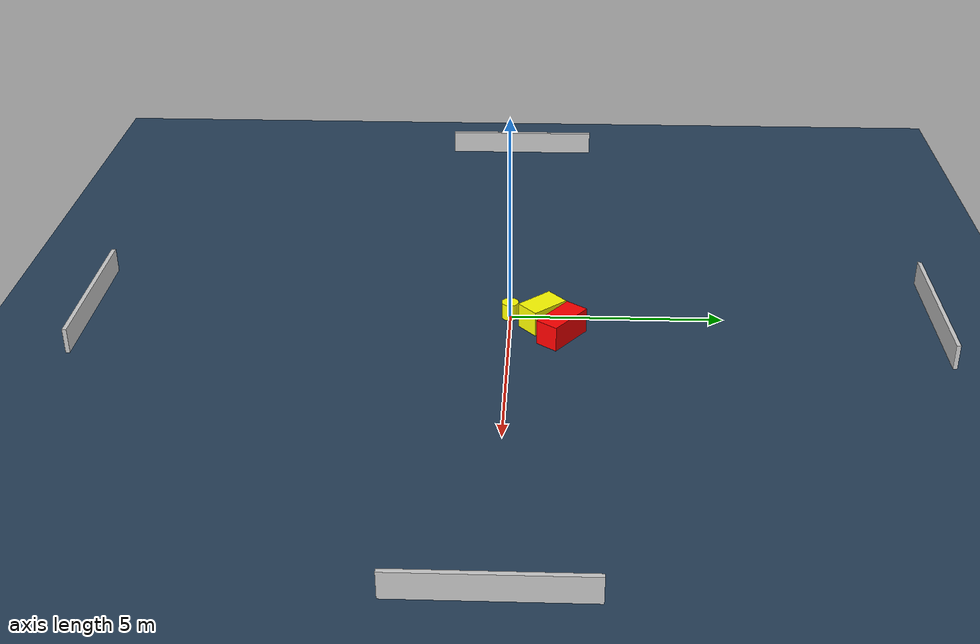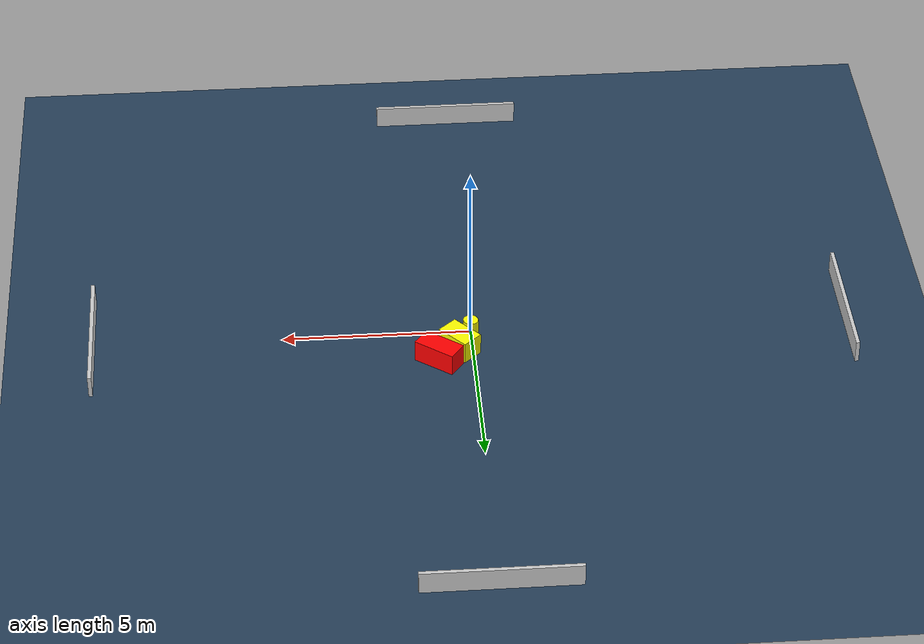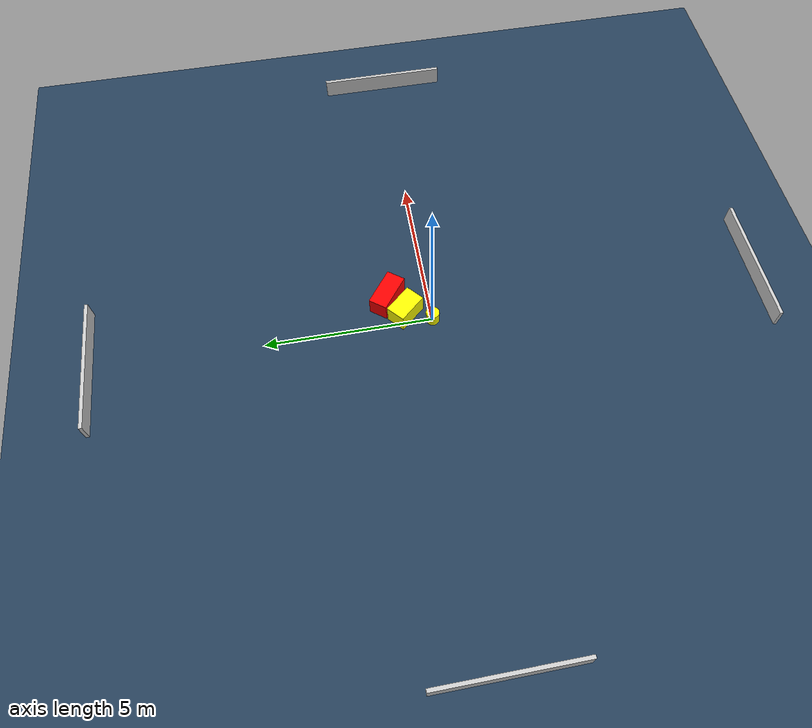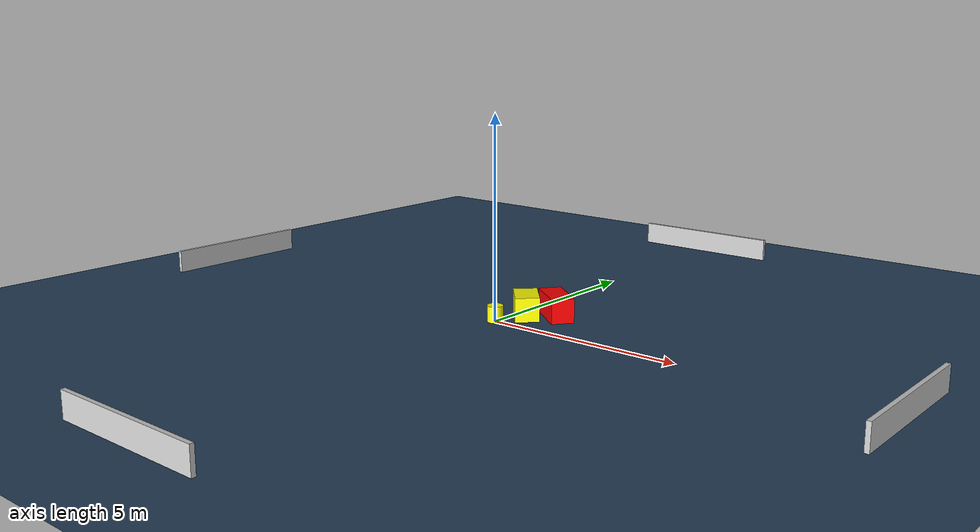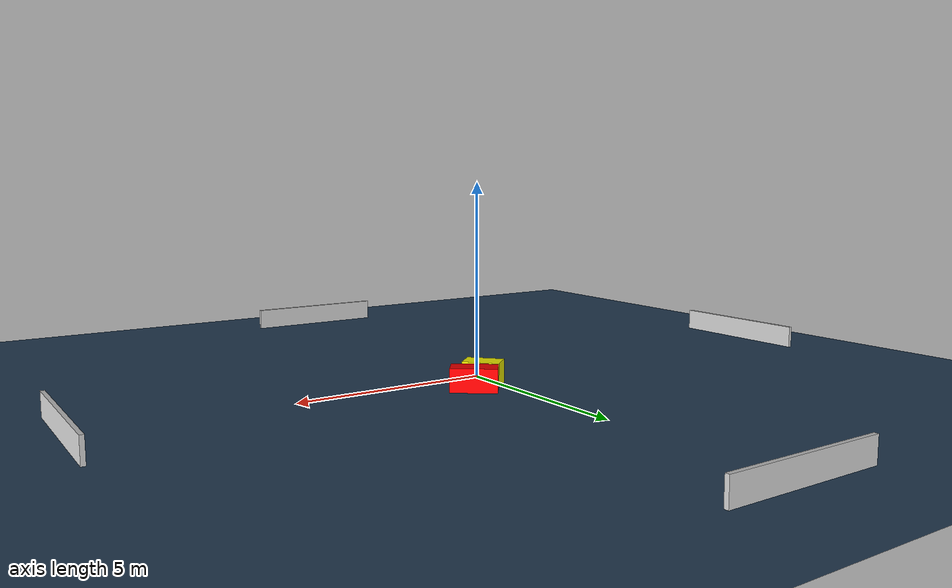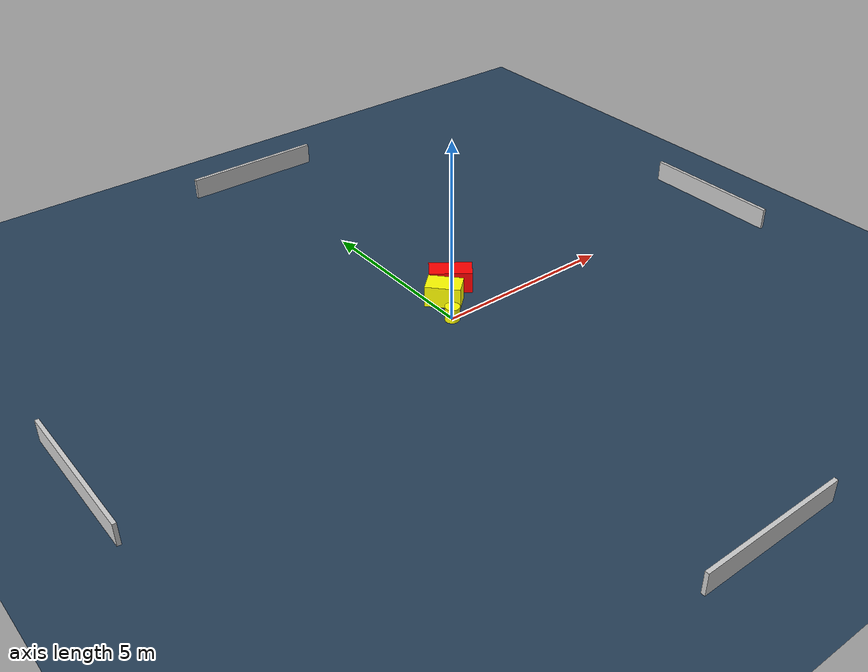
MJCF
<?xml version="1.0" ?>
<mujoco model="generated_environment">
  <option timestep="0.01" integrator="RK4" cone="elliptic"/>
  <default>
    <geom density="1"/>
  </default>
  <asset>
    <texture builtin="gradient" height="3072" name="skybox" rgb1="0.3 0.5 0.7" rgb2="0 0 0" type="skybox" width="512"/>
    <texture builtin="checker" height="300" name="groundplane" rgb1="0.2 0.3 0.4" rgb2="0.1 0.2 0.3" type="2d" width="300"/>
    <material name="groundplane" reflectance="0.2" texrepeat="5 5" texture="groundplane"/>
  </asset>
  <worldbody>
    <light dir="0 0 -1" directional="true" pos="0 0 1.5"/>
    <geom condim="3" friction="0.5 0.005 0.001" material="groundplane" name="floor" pos="0 0 0" size="0 0 0.05" type="plane"/>
    <body name="walls">
      <geom name="wall_1" condim="4" pos="-10.0 0.0 0.3" rgba="0.800000011920929 0.800000011920929 0.800000011920929 1.0" size="0.05 2.0 0.3" type="box"/>
      <geom name="wall_2" condim="4" pos="10.0 0.0 0.3" rgba="0.800000011920929 0.800000011920929 0.800000011920929 1.0" size="0.05 2.0 0.3" type="box"/>
      <geom name="wall_3" condim="4" pos="0.0 -10.0 0.3" rgba="0.800000011920929 0.800000011920929 0.800000011920929 1.0" size="2.0 0.05 0.3" type="box"/>
      <geom name="wall_4" condim="4" pos="0.0 10.0 0.3" rgba="0.800000011920929 0.800000011920929 0.800000011920929 1.0" size="2.0 0.05 0.3" type="box"/>
    </body>
    <body name="robot">
      <joint name="joint_x" type="slide" pos="0 0 0" axis="1 0 0"/>
      <joint name="joint_y" type="slide" pos="0 0 0" axis="0 1 0"/>
      <geom name="robot" type="cylinder" pos="0.0 0.0 0.2" size="0.2 0.2 0.0" mass="5.0" friction="1.0 0.005 0.0001" condim="4" rgba="1.0 1.0 0.0 1.0"/>
    </body>
    <body name="obstacle_1_movable">
      <geom name="obstacle_1_movable" condim="4" pos="0.34369317912965497 0.7628830050304718 0.3" euler="0 0 131.94149659146828" friction="0.0 0.005 0.001" rgba="1.0 1.0 0.0 1.0" size="0.473701935846104 0.29937401838072353 0.3" type="box" mass="0.1"/>
      <joint type="free"/>
    </body>
    <body name="obstacle_2_static">
      <geom name="obstacle_2_static" condim="4" pos="0.9150089163889354 1.2198821603694707 0.3" euler="0 0 52.92444806496612" friction="0.0 0.005 0.001" rgba="1.0 0.0 0.0 1.0" size="0.282702671543665 0.5817430255398212 0.3" type="box"/>
    </body>
  </worldbody>
  <actuator>
    <motor name="actuator_x" joint="joint_x" gear="1" ctrlrange="-1 1"/>
    <motor name="actuator_y" joint="joint_y" gear="1" ctrlrange="-1 1"/>
  </actuator>
</mujoco>
